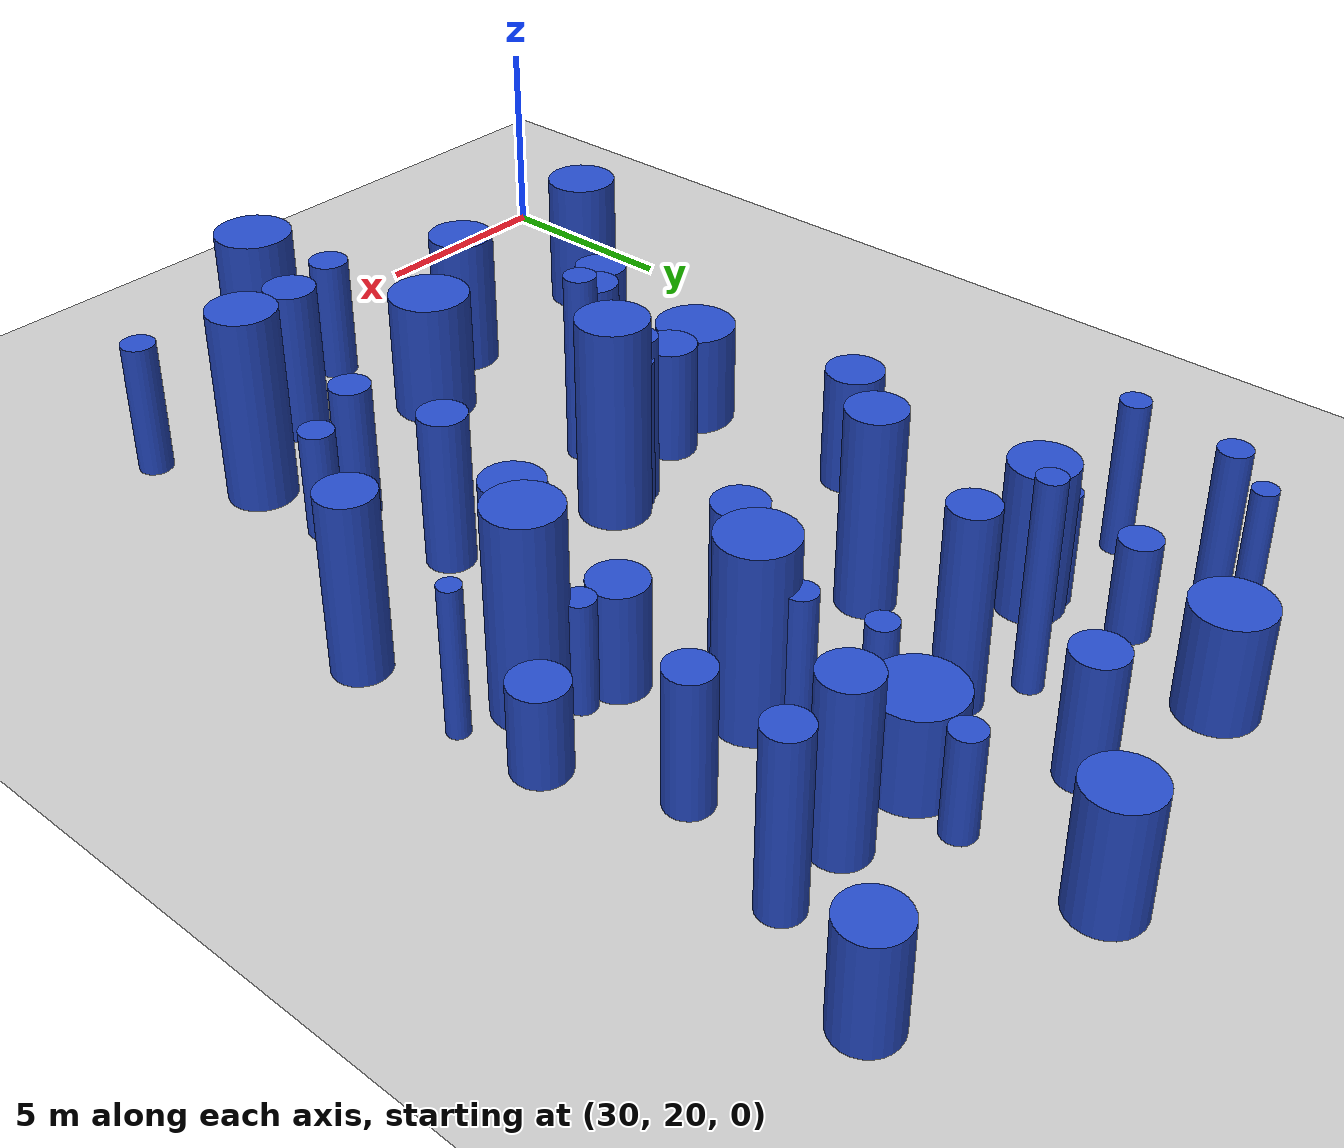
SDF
<sdf version="1.6">
 <world name="default">
  <model name="ground_plane">
   <static>1</static>
   <link name="link">
    <collision name="collision">
     <geometry><plane><normal>0 0 1</normal><size>100 100</size></plane></geometry>
     <surface><friction><ode><mu>100</mu><mu2>50</mu2></ode></friction></surface>
    </collision>
    <visual name="visual">
     <cast_shadows>0</cast_shadows>
     <geometry><plane><normal>0 0 1</normal><size>100 100</size></plane></geometry>
     <material>
      <script><uri>file://media/materials/scripts/gazebo.material</uri><name>Gazebo/Grey</name></script>
     </material>
    </visual>
   </link>
  </model>
  <model name="8">
   <static>0</static>
   <link name="link">
    <inertial>
     <mass>2</mass>
     <inertia><ixx>4.21888</ixx><ixy>0</ixy><ixz>0</ixz><iyy>4.21888</iyy><iyz>0</iyz><izz>0.689911</izz></inertia>
    </inertial>
    <collision name="collision">
     <geometry><cylinder><length>4.82115</length><radius>0.830609</radius></cylinder></geometry>
     <surface><contact><collide_without_contact>1</collide_without_contact></contact></surface>
    </collision>
    <visual name="visual">
     <geometry><cylinder><length>4.82115</length><radius>0.830609</radius></cylinder></geometry>
     <material>
      <script><uri>file://media/materials/scripts/gazebo.material</uri><name>Gazebo/Blue</name></script>
     </material>
    </visual>
    <gravity>0</gravity>
   </link>
   <pose>45.7281 35.9267 2.41058 0 -0 0</pose>
  </model>
  <model name="9">
   <static>0</static>
   <link name="link">
    <inertial>
     <mass>2</mass>
     <inertia><ixx>1.68993</ixx><ixy>0</ixy><ixz>0</ixz><iyy>1.68993</iyy><iyz>0</iyz><izz>0.640182</izz></inertia>
    </inertial>
    <collision name="collision">
     <geometry><cylinder><length>2.86689</length><radius>0.800114</radius></cylinder></geometry>
     <surface><contact><collide_without_contact>1</collide_without_contact></contact></surface>
    </collision>
    <visual name="visual">
     <geometry><cylinder><length>2.86689</length><radius>0.800114</radius></cylinder></geometry>
     <material>
      <script><uri>file://media/materials/scripts/gazebo.material</uri><name>Gazebo/Blue</name></script>
     </material>
    </visual>
    <gravity>0</gravity>
   </link>
   <pose>42.9643 47.197 1.43344 0 -0 0</pose>
  </model>
  <model name="15">
   <static>0</static>
   <link name="link">
    <inertial>
     <mass>2</mass>
     <inertia>
      <ixx>0.941599</ixx>
      <ixy>0</ixy>
      <ixz>0</ixz>
      <iyy>0.941599</iyy>
      <iyz>0</iyz>
      <izz>0.406003</izz>
     </inertia>
    </inertial>
    <collision name="collision">
     <geometry><cylinder><length>2.10513</length><radius>0.637184</radius></cylinder></geometry>
     <surface><contact><collide_without_contact>1</collide_without_contact></contact></surface>
    </collision>
    <visual name="visual">
     <geometry><cylinder><length>2.10513</length><radius>0.637184</radius></cylinder></geometry>
     <material>
      <script><uri>file://media/materials/scripts/gazebo.material</uri><name>Gazebo/Blue</name></script>
     </material>
    </visual>
    <gravity>0</gravity>
   </link>
   <pose>46.8697 37.3288 1.05257 0 -0 0</pose>
  </model>
  <model name="18">
   <static>0</static>
   <link name="link">
    <inertial>
     <mass>2</mass>
     <inertia><ixx>1.93693</ixx><ixy>0</ixy><ixz>0</ixz><iyy>1.93693</iyy><iyz>0</iyz><izz>0.344966</izz></inertia>
    </inertial>
    <collision name="collision">
     <geometry><cylinder><length>3.25372</length><radius>0.587338</radius></cylinder></geometry>
     <surface><contact><collide_without_contact>1</collide_without_contact></contact></surface>
    </collision>
    <visual name="visual">
     <geometry><cylinder><length>3.25372</length><radius>0.587338</radius></cylinder></geometry>
     <material>
      <script><uri>file://media/materials/scripts/gazebo.material</uri><name>Gazebo/Blue</name></script>
     </material>
    </visual>
    <gravity>0</gravity>
   </link>
   <pose>36.1652 28.7323 1.62686 0 -0 0</pose>
  </model>
  <model name="24">
   <static>0</static>
   <link name="link">
    <inertial>
     <mass>2</mass>
     <inertia><ixx>2.50462</ixx><ixy>0</ixy><ixz>0</ixz><iyy>2.50462</iyy><iyz>0</iyz><izz>0.451325</izz></inertia>
    </inertial>
    <collision name="collision">
     <geometry><cylinder><length>3.69781</length><radius>0.671807</radius></cylinder></geometry>
     <surface><contact><collide_without_contact>1</collide_without_contact></contact></surface>
    </collision>
    <visual name="visual">
     <geometry><cylinder><length>3.69781</length><radius>0.671807</radius></cylinder></geometry>
     <material>
      <script><uri>file://media/materials/scripts/gazebo.material</uri><name>Gazebo/Blue</name></script>
     </material>
    </visual>
    <gravity>0</gravity>
   </link>
   <pose>39.0289 32.3304 1.8489 0 -0 0</pose>
  </model>
  <model name="25">
   <static>0</static>
   <link name="link">
    <inertial>
     <mass>2</mass>
     <inertia><ixx>2.00158</ixx><ixy>0</ixy><ixz>0</ixz><iyy>2.00158</iyy><iyz>0</iyz><izz>0.12036</izz></inertia>
    </inertial>
    <collision name="collision">
     <geometry><cylinder><length>3.41298</length><radius>0.346929</radius></cylinder></geometry>
     <surface><contact><collide_without_contact>1</collide_without_contact></contact></surface>
    </collision>
    <visual name="visual">
     <geometry><cylinder><length>3.41298</length><radius>0.346929</radius></cylinder></geometry>
     <material>
      <script><uri>file://media/materials/scripts/gazebo.material</uri><name>Gazebo/Blue</name></script>
     </material>
    </visual>
    <gravity>0</gravity>
   </link>
   <pose>42.8894 40.3109 1.70649 0 -0 0</pose>
  </model>
  <model name="26">
   <static>0</static>
   <link name="link">
    <inertial>
     <mass>2</mass>
     <inertia><ixx>2.48469</ixx><ixy>0</ixy><ixz>0</ixz><iyy>2.48469</iyy><iyz>0</iyz><izz>0.314146</izz></inertia>
    </inertial>
    <collision name="collision">
     <geometry><cylinder><length>3.73707</length><radius>0.560487</radius></cylinder></geometry>
     <surface><contact><collide_without_contact>1</collide_without_contact></contact></surface>
    </collision>
    <visual name="visual">
     <geometry><cylinder><length>3.73707</length><radius>0.560487</radius></cylinder></geometry>
     <material>
      <script><uri>file://media/materials/scripts/gazebo.material</uri><name>Gazebo/Blue</name></script>
     </material>
    </visual>
    <gravity>0</gravity>
   </link>
   <pose>43.2934 31.0546 1.86853 0 -0 0</pose>
  </model>
  <model name="30">
   <static>0</static>
   <link name="link">
    <inertial>
     <mass>2</mass>
     <inertia><ixx>1.34983</ixx><ixy>0</ixy><ixz>0</ixz><iyy>1.34983</iyy><iyz>0</iyz><izz>0.973345</izz></inertia>
    </inertial>
    <collision name="collision">
     <geometry><cylinder><length>2.27573</length><radius>0.986583</radius></cylinder></geometry>
     <surface><contact><collide_without_contact>1</collide_without_contact></contact></surface>
    </collision>
    <visual name="visual">
     <geometry><cylinder><length>2.27573</length><radius>0.986583</radius></cylinder></geometry>
     <material>
      <script><uri>file://media/materials/scripts/gazebo.material</uri><name>Gazebo/Blue</name></script>
     </material>
    </visual>
    <gravity>0</gravity>
   </link>
   <pose>42.5501 42.8164 1.13786 0 -0 0</pose>
  </model>
  <model name="35">
   <static>0</static>
   <link name="link">
    <inertial>
     <mass>2</mass>
     <inertia><ixx>4.18085</ixx><ixy>0</ixy><ixz>0</ixz><iyy>4.18085</iyy><iyz>0</iyz><izz>0.105493</izz></inertia>
    </inertial>
    <collision name="collision">
     <geometry><cylinder><length>4.97681</length><radius>0.324796</radius></cylinder></geometry>
     <surface><contact><collide_without_contact>1</collide_without_contact></contact></surface>
    </collision>
    <visual name="visual">
     <geometry><cylinder><length>4.97681</length><radius>0.324796</radius></cylinder></geometry>
     <material>
      <script><uri>file://media/materials/scripts/gazebo.material</uri><name>Gazebo/Blue</name></script>
     </material>
    </visual>
    <gravity>0</gravity>
   </link>
   <pose>38.6592 42.8925 2.4884 0 -0 0</pose>
  </model>
  <model name="37">
   <static>0</static>
   <link name="link">
    <inertial>
     <mass>2</mass>
     <inertia><ixx>2.41909</ixx><ixy>0</ixy><ixz>0</ixz><iyy>2.41909</iyy><iyz>0</iyz><izz>0.120372</izz></inertia>
    </inertial>
    <collision name="collision">
     <geometry><cylinder><length>3.76211</length><radius>0.346947</radius></cylinder></geometry>
     <surface><contact><collide_without_contact>1</collide_without_contact></contact></surface>
    </collision>
    <visual name="visual">
     <geometry><cylinder><length>3.76211</length><radius>0.346947</radius></cylinder></geometry>
     <material>
      <script><uri>file://media/materials/scripts/gazebo.material</uri><name>Gazebo/Blue</name></script>
     </material>
    </visual>
    <gravity>0</gravity>
   </link>
   <pose>33.2468 41.7347 1.88105 0 -0 0</pose>
  </model>
  <model name="40">
   <static>0</static>
   <link name="link">
    <inertial>
     <mass>2</mass>
     <inertia><ixx>1.05673</ixx><ixy>0</ixy><ixz>0</ixz><iyy>1.05673</iyy><iyz>0</iyz><izz>0.145747</izz></inertia>
    </inertial>
    <collision name="collision">
     <geometry><cylinder><length>2.42964</length><radius>0.381768</radius></cylinder></geometry>
     <surface><contact><collide_without_contact>1</collide_without_contact></contact></surface>
    </collision>
    <visual name="visual">
     <geometry><cylinder><length>2.42964</length><radius>0.381768</radius></cylinder></geometry>
     <material>
      <script><uri>file://media/materials/scripts/gazebo.material</uri><name>Gazebo/Blue</name></script>
     </material>
    </visual>
    <gravity>0</gravity>
   </link>
   <pose>43.0934 44.2266 1.21482 0 -0 0</pose>
  </model>
  <model name="50">
   <static>0</static>
   <link name="link">
    <inertial>
     <mass>2</mass>
     <inertia><ixx>1.52309</ixx><ixy>0</ixy><ixz>0</ixz><iyy>1.52309</iyy><iyz>0</iyz><izz>0.943157</izz></inertia>
    </inertial>
    <collision name="collision">
     <geometry><cylinder><length>2.51179</length><radius>0.971163</radius></cylinder></geometry>
     <surface><contact><collide_without_contact>1</collide_without_contact></contact></surface>
    </collision>
    <visual name="visual">
     <geometry><cylinder><length>2.51179</length><radius>0.971163</radius></cylinder></geometry>
     <material>
      <script><uri>file://media/materials/scripts/gazebo.material</uri><name>Gazebo/Blue</name></script>
     </material>
    </visual>
    <gravity>0</gravity>
   </link>
   <pose>35.1033 31.0404 1.25589 0 -0 0</pose>
  </model>
  <model name="54">
   <static>0</static>
   <link name="link">
    <inertial>
     <mass>2</mass>
     <inertia><ixx>1.94131</ixx><ixy>0</ixy><ixz>0</ixz><iyy>1.94131</iyy><iyz>0</iyz><izz>0.231084</izz></inertia>
    </inertial>
    <collision name="collision">
     <geometry><cylinder><length>3.30977</length><radius>0.480712</radius></cylinder></geometry>
     <surface><contact><collide_without_contact>1</collide_without_contact></contact></surface>
    </collision>
    <visual name="visual">
     <geometry><cylinder><length>3.30977</length><radius>0.480712</radius></cylinder></geometry>
     <material>
      <script><uri>file://media/materials/scripts/gazebo.material</uri><name>Gazebo/Blue</name></script>
     </material>
    </visual>
    <gravity>0</gravity>
   </link>
   <pose>43.3469 28.1129 1.65489 0 -0 0</pose>
  </model>
  <model name="61">
   <static>0</static>
   <link name="link">
    <inertial>
     <mass>2</mass>
     <inertia><ixx>2.09542</ixx><ixy>0</ixy><ixz>0</ixz><iyy>2.09542</iyy><iyz>0</iyz><izz>0.981414</izz></inertia>
    </inertial>
    <collision name="collision">
     <geometry><cylinder><length>3.10294</length><radius>0.990663</radius></cylinder></geometry>
     <surface><contact><collide_without_contact>1</collide_without_contact></contact></surface>
    </collision>
    <visual name="visual">
     <geometry><cylinder><length>3.10294</length><radius>0.990663</radius></cylinder></geometry>
     <material>
      <script><uri>file://media/materials/scripts/gazebo.material</uri><name>Gazebo/Blue</name></script>
     </material>
    </visual>
    <gravity>0</gravity>
   </link>
   <pose>38.9949 25.9241 1.55147 0 -0 0</pose>
  </model>
  <model name="64">
   <static>0</static>
   <link name="link">
    <inertial>
     <mass>2</mass>
     <inertia><ixx>1.21441</ixx><ixy>0</ixy><ixz>0</ixz><iyy>1.21441</iyy><iyz>0</iyz><izz>0.120471</izz></inertia>
    </inertial>
    <collision name="collision">
     <geometry><cylinder><length>2.63155</length><radius>0.34709</radius></cylinder></geometry>
     <surface><contact><collide_without_contact>1</collide_without_contact></contact></surface>
    </collision>
    <visual name="visual">
     <geometry><cylinder><length>2.63155</length><radius>0.34709</radius></cylinder></geometry>
     <material>
      <script><uri>file://media/materials/scripts/gazebo.material</uri><name>Gazebo/Blue</name></script>
     </material>
    </visual>
    <gravity>0</gravity>
   </link>
   <pose>45.0063 36.6208 1.31577 0 -0 0</pose>
  </model>
  <model name="67">
   <static>0</static>
   <link name="link">
    <inertial>
     <mass>2</mass>
     <inertia><ixx>1.71533</ixx><ixy>0</ixy><ixz>0</ixz><iyy>1.71533</iyy><iyz>0</iyz><izz>0.238819</izz></inertia>
    </inertial>
    <collision name="collision">
     <geometry><cylinder><length>3.09444</length><radius>0.488691</radius></cylinder></geometry>
     <surface><contact><collide_without_contact>1</collide_without_contact></contact></surface>
    </collision>
    <visual name="visual">
     <geometry><cylinder><length>3.09444</length><radius>0.488691</radius></cylinder></geometry>
     <material>
      <script><uri>file://media/materials/scripts/gazebo.material</uri><name>Gazebo/Blue</name></script>
     </material>
    </visual>
    <gravity>0</gravity>
   </link>
   <pose>39.4487 22.7582 1.54722 0 -0 0</pose>
  </model>
  <model name="85">
   <static>0</static>
   <link name="link">
    <inertial>
     <mass>2</mass>
     <inertia><ixx>2.93221</ixx><ixy>0</ixy><ixz>0</ixz><iyy>2.93221</iyy><iyz>0</iyz><izz>0.192684</izz></inertia>
    </inertial>
    <collision name="collision">
     <geometry><cylinder><length>4.12495</length><radius>0.438958</radius></cylinder></geometry>
     <surface><contact><collide_without_contact>1</collide_without_contact></contact></surface>
    </collision>
    <visual name="visual">
     <geometry><cylinder><length>4.12495</length><radius>0.438958</radius></cylinder></geometry>
     <material>
      <script><uri>file://media/materials/scripts/gazebo.material</uri><name>Gazebo/Blue</name></script>
     </material>
    </visual>
    <gravity>0</gravity>
   </link>
   <pose>38.6 32.3805 2.06248 0 -0 0</pose>
  </model>
  <model name="104">
   <static>0</static>
   <link name="link">
    <inertial>
     <mass>2</mass>
     <inertia>
      <ixx>0.736949</ixx>
      <ixy>0</ixy>
      <ixz>0</ixz>
      <iyy>0.736949</iyy>
      <iyz>0</iyz>
      <izz>0.125997</izz>
     </inertia>
    </inertial>
    <collision name="collision">
     <geometry><cylinder><length>2.0109</length><radius>0.354961</radius></cylinder></geometry>
     <surface><contact><collide_without_contact>1</collide_without_contact></contact></surface>
    </collision>
    <visual name="visual">
     <geometry><cylinder><length>2.0109</length><radius>0.354961</radius></cylinder></geometry>
     <material>
      <script><uri>file://media/materials/scripts/gazebo.material</uri><name>Gazebo/Blue</name></script>
     </material>
    </visual>
    <gravity>0</gravity>
   </link>
   <pose>41.095 40.9536 1.00545 0 -0 0</pose>
  </model>
  <model name="105">
   <static>0</static>
   <link name="link">
    <inertial>
     <mass>2</mass>
     <inertia><ixx>1.90894</ixx><ixy>0</ixy><ixz>0</ixz><iyy>1.90894</iyy><iyz>0</iyz><izz>0.166775</izz></inertia>
    </inertial>
    <collision name="collision">
     <geometry><cylinder><length>3.30958</length><radius>0.408381</radius></cylinder></geometry>
     <surface><contact><collide_without_contact>1</collide_without_contact></contact></surface>
    </collision>
    <visual name="visual">
     <geometry><cylinder><length>3.30958</length><radius>0.408381</radius></cylinder></geometry>
     <material>
      <script><uri>file://media/materials/scripts/gazebo.material</uri><name>Gazebo/Blue</name></script>
     </material>
    </visual>
    <gravity>0</gravity>
   </link>
   <pose>45.3048 23.0794 1.65479 0 -0 0</pose>
  </model>
  <model name="106">
   <static>0</static>
   <link name="link">
    <inertial>
     <mass>2</mass>
     <inertia><ixx>2.37876</ixx><ixy>0</ixy><ixz>0</ixz><iyy>2.37876</iyy><iyz>0</iyz><izz>0.378388</izz></inertia>
    </inertial>
    <collision name="collision">
     <geometry><cylinder><length>3.62456</length><radius>0.615133</radius></cylinder></geometry>
     <surface><contact><collide_without_contact>1</collide_without_contact></contact></surface>
    </collision>
    <visual name="visual">
     <geometry><cylinder><length>3.62456</length><radius>0.615133</radius></cylinder></geometry>
     <material>
      <script><uri>file://media/materials/scripts/gazebo.material</uri><name>Gazebo/Blue</name></script>
     </material>
    </visual>
    <gravity>0</gravity>
   </link>
   <pose>41.6078 37.7844 1.81228 0 -0 0</pose>
  </model>
  <model name="110">
   <static>0</static>
   <link name="link">
    <inertial>
     <mass>2</mass>
     <inertia><ixx>2.97227</ixx><ixy>0</ixy><ixz>0</ixz><iyy>2.97227</iyy><iyz>0</iyz><izz>0.242223</izz></inertia>
    </inertial>
    <collision name="collision">
     <geometry><cylinder><length>4.13605</length><radius>0.492161</radius></cylinder></geometry>
     <surface><contact><collide_without_contact>1</collide_without_contact></contact></surface>
    </collision>
    <visual name="visual">
     <geometry><cylinder><length>4.13605</length><radius>0.492161</radius></cylinder></geometry>
     <material>
      <script><uri>file://media/materials/scripts/gazebo.material</uri><name>Gazebo/Blue</name></script>
     </material>
    </visual>
    <gravity>0</gravity>
   </link>
   <pose>46.6972 42.9691 2.06803 0 -0 0</pose>
  </model>
  <model name="115">
   <static>0</static>
   <link name="link">
    <inertial>
     <mass>2</mass>
     <inertia><ixx>3.61971</ixx><ixy>0</ixy><ixz>0</ixz><iyy>3.61971</iyy><iyz>0</iyz><izz>0.745024</izz></inertia>
    </inertial>
    <collision name="collision">
     <geometry><cylinder><length>4.41398</length><radius>0.863148</radius></cylinder></geometry>
     <surface><contact><collide_without_contact>1</collide_without_contact></contact></surface>
    </collision>
    <visual name="visual">
     <geometry><cylinder><length>4.41398</length><radius>0.863148</radius></cylinder></geometry>
     <material>
      <script><uri>file://media/materials/scripts/gazebo.material</uri><name>Gazebo/Blue</name></script>
     </material>
    </visual>
    <gravity>0</gravity>
   </link>
   <pose>43.1164 39.4255 2.20699 0 -0 0</pose>
  </model>
  <model name="124">
   <static>0</static>
   <link name="link">
    <inertial>
     <mass>2</mass>
     <inertia><ixx>1.24879</ixx><ixy>0</ixy><ixz>0</ixz><iyy>1.24879</iyy><iyz>0</iyz><izz>0.170517</izz></inertia>
    </inertial>
    <collision name="collision">
     <geometry><cylinder><length>2.64219</length><radius>0.412937</radius></cylinder></geometry>
     <surface><contact><collide_without_contact>1</collide_without_contact></contact></surface>
    </collision>
    <visual name="visual">
     <geometry><cylinder><length>2.64219</length><radius>0.412937</radius></cylinder></geometry>
     <material>
      <script><uri>file://media/materials/scripts/gazebo.material</uri><name>Gazebo/Blue</name></script>
     </material>
    </visual>
    <gravity>0</gravity>
   </link>
   <pose>44.3948 28.1453 1.3211 0 -0 0</pose>
  </model>
  <model name="127">
   <static>0</static>
   <link name="link">
    <inertial>
     <mass>2</mass>
     <inertia><ixx>2.70302</ixx><ixy>0</ixy><ixz>0</ixz><iyy>2.70302</iyy><iyz>0</iyz><izz>0.394791</izz></inertia>
    </inertial>
    <collision name="collision">
     <geometry><cylinder><length>3.87734</length><radius>0.628324</radius></cylinder></geometry>
     <surface><contact><collide_without_contact>1</collide_without_contact></contact></surface>
    </collision>
    <visual name="visual">
     <geometry><cylinder><length>3.87734</length><radius>0.628324</radius></cylinder></geometry>
     <material>
      <script><uri>file://media/materials/scripts/gazebo.material</uri><name>Gazebo/Blue</name></script>
     </material>
    </visual>
    <gravity>0</gravity>
   </link>
   <pose>41.9268 24.3981 1.93867 0 -0 0</pose>
  </model>
  <model name="131">
   <static>0</static>
   <link name="link">
    <inertial>
     <mass>2</mass>
     <inertia><ixx>2.45671</ixx><ixy>0</ixy><ixz>0</ixz><iyy>2.45671</iyy><iyz>0</iyz><izz>0.599774</izz></inertia>
    </inertial>
    <collision name="collision">
     <geometry><cylinder><length>3.59735</length><radius>0.77445</radius></cylinder></geometry>
     <surface><contact><collide_without_contact>1</collide_without_contact></contact></surface>
    </collision>
    <visual name="visual">
     <geometry><cylinder><length>3.59735</length><radius>0.77445</radius></cylinder></geometry>
     <material>
      <script><uri>file://media/materials/scripts/gazebo.material</uri><name>Gazebo/Blue</name></script>
     </material>
    </visual>
    <gravity>0</gravity>
   </link>
   <pose>36.3397 41.4394 1.79867 0 -0 0</pose>
  </model>
  <model name="133">
   <static>0</static>
   <link name="link">
    <inertial>
     <mass>2</mass>
     <inertia>
      <ixx>2.08785</ixx>
      <ixy>0</ixy>
      <ixz>0</ixz>
      <iyy>2.08785</iyy>
      <iyz>0</iyz>
      <izz>0.0660541</izz>
     </inertia>
    </inertial>
    <collision name="collision">
     <geometry><cylinder><length>3.51126</length><radius>0.25701</radius></cylinder></geometry>
     <surface><contact><collide_without_contact>1</collide_without_contact></contact></surface>
    </collision>
    <visual name="visual">
     <geometry><cylinder><length>3.51126</length><radius>0.25701</radius></cylinder></geometry>
     <material>
      <script><uri>file://media/materials/scripts/gazebo.material</uri><name>Gazebo/Blue</name></script>
     </material>
    </visual>
    <gravity>0</gravity>
   </link>
   <pose>47.1721 35.3749 1.75563 0 -0 0</pose>
  </model>
  <model name="140">
   <static>0</static>
   <link name="link">
    <inertial>
     <mass>2</mass>
     <inertia><ixx>1.66226</ixx><ixy>0</ixy><ixz>0</ixz><iyy>1.66226</iyy><iyz>0</iyz><izz>0.357537</izz></inertia>
    </inertial>
    <collision name="collision">
     <geometry><cylinder><length>2.98345</length><radius>0.597944</radius></cylinder></geometry>
     <surface><contact><collide_without_contact>1</collide_without_contact></contact></surface>
    </collision>
    <visual name="visual">
     <geometry><cylinder><length>2.98345</length><radius>0.597944</radius></cylinder></geometry>
     <material>
      <script><uri>file://media/materials/scripts/gazebo.material</uri><name>Gazebo/Blue</name></script>
     </material>
    </visual>
    <gravity>0</gravity>
   </link>
   <pose>40.2521 45.1222 1.49172 0 -0 0</pose>
  </model>
  <model name="153">
   <static>0</static>
   <link name="link">
    <inertial>
     <mass>2</mass>
     <inertia><ixx>3.80109</ixx><ixy>0</ixy><ixz>0</ixz><iyy>3.80109</iyy><iyz>0</iyz><izz>0.299501</izz></inertia>
    </inertial>
    <collision name="collision">
     <geometry><cylinder><length>4.6806</length><radius>0.547266</radius></cylinder></geometry>
     <surface><contact><collide_without_contact>1</collide_without_contact></contact></surface>
    </collision>
    <visual name="visual">
     <geometry><cylinder><length>4.6806</length><radius>0.547266</radius></cylinder></geometry>
     <material>
      <script><uri>file://media/materials/scripts/gazebo.material</uri><name>Gazebo/Blue</name></script>
     </material>
    </visual>
    <gravity>0</gravity>
   </link>
   <pose>40.0122 42.0886 2.3403 0 -0 0</pose>
  </model>
  <model name="157">
   <static>0</static>
   <link name="link">
    <inertial>
     <mass>2</mass>
     <inertia><ixx>1.66428</ixx><ixy>0</ixy><ixz>0</ixz><iyy>1.66428</iyy><iyz>0</iyz><izz>0.47442</izz></inertia>
    </inertial>
    <collision name="collision">
     <geometry><cylinder><length>2.92616</length><radius>0.688782</radius></cylinder></geometry>
     <surface><contact><collide_without_contact>1</collide_without_contact></contact></surface>
    </collision>
    <visual name="visual">
     <geometry><cylinder><length>2.92616</length><radius>0.688782</radius></cylinder></geometry>
     <material>
      <script><uri>file://media/materials/scripts/gazebo.material</uri><name>Gazebo/Blue</name></script>
     </material>
    </visual>
    <gravity>0</gravity>
   </link>
   <pose>34.9365 35.6566 1.46308 0 -0 0</pose>
  </model>
  <model name="161">
   <static>0</static>
   <link name="link">
    <inertial>
     <mass>2</mass>
     <inertia><ixx>1.50176</ixx><ixy>0</ixy><ixz>0</ixz><iyy>1.50176</iyy><iyz>0</iyz><izz>0.788703</izz></inertia>
    </inertial>
    <collision name="collision">
     <geometry><cylinder><length>2.57769</length><radius>0.888089</radius></cylinder></geometry>
     <surface><contact><collide_without_contact>1</collide_without_contact></contact></surface>
    </collision>
    <visual name="visual">
     <geometry><cylinder><length>2.57769</length><radius>0.888089</radius></cylinder></geometry>
     <material>
      <script><uri>file://media/materials/scripts/gazebo.material</uri><name>Gazebo/Blue</name></script>
     </material>
    </visual>
    <gravity>0</gravity>
   </link>
   <pose>36.8547 46.0717 1.28884 0 -0 0</pose>
  </model>
  <model name="177">
   <static>0</static>
   <link name="link">
    <inertial>
     <mass>2</mass>
     <inertia><ixx>2.3402</ixx><ixy>0</ixy><ixz>0</ixz><iyy>2.3402</iyy><iyz>0</iyz><izz>0.645349</izz></inertia>
    </inertial>
    <collision name="collision">
     <geometry><cylinder><length>3.47924</length><radius>0.803336</radius></cylinder></geometry>
     <surface><contact><collide_without_contact>1</collide_without_contact></contact></surface>
    </collision>
    <visual name="visual">
     <geometry><cylinder><length>3.47924</length><radius>0.803336</radius></cylinder></geometry>
     <material>
      <script><uri>file://media/materials/scripts/gazebo.material</uri><name>Gazebo/Blue</name></script>
     </material>
    </visual>
    <gravity>0</gravity>
   </link>
   <pose>36.8092 24.7473 1.73962 0 -0 0</pose>
  </model>
  <model name="178">
   <static>0</static>
   <link name="link">
    <inertial>
     <mass>2</mass>
     <inertia><ixx>2.36862</ixx><ixy>0</ixy><ixz>0</ixz><iyy>2.36862</iyy><iyz>0</iyz><izz>0.763375</izz></inertia>
    </inertial>
    <collision name="collision">
     <geometry><cylinder><length>3.45276</length><radius>0.873713</radius></cylinder></geometry>
     <surface><contact><collide_without_contact>1</collide_without_contact></contact></surface>
    </collision>
    <visual name="visual">
     <geometry><cylinder><length>3.45276</length><radius>0.873713</radius></cylinder></geometry>
     <material>
      <script><uri>file://media/materials/scripts/gazebo.material</uri><name>Gazebo/Blue</name></script>
     </material>
    </visual>
    <gravity>0</gravity>
   </link>
   <pose>32.3194 24.6572 1.72638 0 -0 0</pose>
  </model>
  <model name="181">
   <static>0</static>
   <link name="link">
    <inertial>
     <mass>2</mass>
     <inertia><ixx>4.4473</ixx><ixy>0</ixy><ixz>0</ixz><iyy>4.4473</iyy><iyz>0</iyz><izz>0.703906</izz></inertia>
    </inertial>
    <collision name="collision">
     <geometry><cylinder><length>4.95702</length><radius>0.838991</radius></cylinder></geometry>
     <surface><contact><collide_without_contact>1</collide_without_contact></contact></surface>
    </collision>
    <visual name="visual">
     <geometry><cylinder><length>4.95702</length><radius>0.838991</radius></cylinder></geometry>
     <material>
      <script><uri>file://media/materials/scripts/gazebo.material</uri><name>Gazebo/Blue</name></script>
     </material>
    </visual>
    <gravity>0</gravity>
   </link>
   <pose>39.5142 32.4462 2.47851 0 -0 0</pose>
  </model>
  <model name="184">
   <static>0</static>
   <link name="link">
    <inertial>
     <mass>2</mass>
     <inertia><ixx>1.29878</ixx><ixy>0</ixy><ixz>0</ixz><iyy>1.29878</iyy><iyz>0</iyz><izz>0.120251</izz></inertia>
    </inertial>
    <collision name="collision">
     <geometry><cylinder><length>2.72616</length><radius>0.346772</radius></cylinder></geometry>
     <surface><contact><collide_without_contact>1</collide_without_contact></contact></surface>
    </collision>
    <visual name="visual">
     <geometry><cylinder><length>2.72616</length><radius>0.346772</radius></cylinder></geometry>
     <material>
      <script><uri>file://media/materials/scripts/gazebo.material</uri><name>Gazebo/Blue</name></script>
     </material>
    </visual>
    <gravity>0</gravity>
   </link>
   <pose>35.8162 41.7483 1.36308 0 -0 0</pose>
  </model>
  <model name="187">
   <static>0</static>
   <link name="link">
    <inertial>
     <mass>2</mass>
     <inertia><ixx>3.28038</ixx><ixy>0</ixy><ixz>0</ixz><iyy>3.28038</iyy><iyz>0</iyz><izz>0.426535</izz></inertia>
    </inertial>
    <collision name="collision">
     <geometry><cylinder><length>4.28983</length><radius>0.653096</radius></cylinder></geometry>
     <surface><contact><collide_without_contact>1</collide_without_contact></contact></surface>
    </collision>
    <visual name="visual">
     <geometry><cylinder><length>4.28983</length><radius>0.653096</radius></cylinder></geometry>
     <material>
      <script><uri>file://media/materials/scripts/gazebo.material</uri><name>Gazebo/Blue</name></script>
     </material>
    </visual>
    <gravity>0</gravity>
   </link>
   <pose>47.092 32.4595 2.14492 0 -0 0</pose>
  </model>
  <model name="188">
   <static>0</static>
   <link name="link">
    <inertial>
     <mass>2</mass>
     <inertia><ixx>4.17685</ixx><ixy>0</ixy><ixz>0</ixz><iyy>4.17685</iyy><iyz>0</iyz><izz>0.658429</izz></inertia>
    </inertial>
    <collision name="collision">
     <geometry><cylinder><length>4.80477</length><radius>0.811436</radius></cylinder></geometry>
     <surface><contact><collide_without_contact>1</collide_without_contact></contact></surface>
    </collision>
    <visual name="visual">
     <geometry><cylinder><length>4.80477</length><radius>0.811436</radius></cylinder></geometry>
     <material>
      <script><uri>file://media/materials/scripts/gazebo.material</uri><name>Gazebo/Blue</name></script>
     </material>
    </visual>
    <gravity>0</gravity>
   </link>
   <pose>44.3475 25.8647 2.40238 0 -0 0</pose>
  </model>
  <model name="192">
   <static>0</static>
   <link name="link">
    <inertial>
     <mass>2</mass>
     <inertia><ixx>4.03755</ixx><ixy>0</ixy><ixz>0</ixz><iyy>4.03755</iyy><iyz>0</iyz><izz>0.45095</izz></inertia>
    </inertial>
    <collision name="collision">
     <geometry><cylinder><length>4.78251</length><radius>0.671528</radius></cylinder></geometry>
     <surface><contact><collide_without_contact>1</collide_without_contact></contact></surface>
    </collision>
    <visual name="visual">
     <geometry><cylinder><length>4.78251</length><radius>0.671528</radius></cylinder></geometry>
     <material>
      <script><uri>file://media/materials/scripts/gazebo.material</uri><name>Gazebo/Blue</name></script>
     </material>
    </visual>
    <gravity>0</gravity>
   </link>
   <pose>38.5385 38.7639 2.39126 0 -0 0</pose>
  </model>
  <model name="196">
   <static>0</static>
   <link name="link">
    <inertial>
     <mass>2</mass>
     <inertia><ixx>1.2622</ixx><ixy>0</ixy><ixz>0</ixz><iyy>1.2622</iyy><iyz>0</iyz><izz>0.426876</izz></inertia>
    </inertial>
    <collision name="collision">
     <geometry><cylinder><length>2.5085</length><radius>0.653358</radius></cylinder></geometry>
     <surface><contact><collide_without_contact>1</collide_without_contact></contact></surface>
    </collision>
    <visual name="visual">
     <geometry><cylinder><length>2.5085</length><radius>0.653358</radius></cylinder></geometry>
     <material>
      <script><uri>file://media/materials/scripts/gazebo.material</uri><name>Gazebo/Blue</name></script>
     </material>
    </visual>
    <gravity>0</gravity>
   </link>
   <pose>34.3565 27.2331 1.25425 0 -0 0</pose>
  </model>
  <model name="204">
   <static>0</static>
   <link name="link">
    <inertial>
     <mass>2</mass>
     <inertia><ixx>1.33373</ixx><ixy>0</ixy><ixz>0</ixz><iyy>1.33373</iyy><iyz>0</iyz><izz>0.437985</izz></inertia>
    </inertial>
    <collision name="collision">
     <geometry><cylinder><length>2.58619</length><radius>0.661805</radius></cylinder></geometry>
     <surface><contact><collide_without_contact>1</collide_without_contact></contact></surface>
    </collision>
    <visual name="visual">
     <geometry><cylinder><length>2.58619</length><radius>0.661805</radius></cylinder></geometry>
     <material>
      <script><uri>file://media/materials/scripts/gazebo.material</uri><name>Gazebo/Blue</name></script>
     </material>
    </visual>
    <gravity>0</gravity>
   </link>
   <pose>44.0384 36.7331 1.2931 0 -0 0</pose>
  </model>
  <model name="208">
   <static>0</static>
   <link name="link">
    <inertial>
     <mass>2</mass>
     <inertia>
      <ixx>2.51796</ixx>
      <ixy>0</ixy>
      <ixz>0</ixz>
      <iyy>2.51796</iyy>
      <iyz>0</iyz>
      <izz>0.0771087</izz>
     </inertia>
    </inertial>
    <collision name="collision">
     <geometry><cylinder><length>3.857</length><radius>0.277685</radius></cylinder></geometry>
     <surface><contact><collide_without_contact>1</collide_without_contact></contact></surface>
    </collision>
    <visual name="visual">
     <geometry><cylinder><length>3.857</length><radius>0.277685</radius></cylinder></geometry>
     <material>
      <script><uri>file://media/materials/scripts/gazebo.material</uri><name>Gazebo/Blue</name></script>
     </material>
    </visual>
    <gravity>0</gravity>
   </link>
   <pose>45.3938 36.0645 1.9285 0 -0 0</pose>
  </model>
  <model name="210">
   <static>0</static>
   <link name="link">
    <inertial>
     <mass>2</mass>
     <inertia><ixx>3.77643</ixx><ixy>0</ixy><ixz>0</ixz><iyy>3.77643</iyy><iyz>0</iyz><izz>0.149231</izz></inertia>
    </inertial>
    <collision name="collision">
     <geometry><cylinder><length>4.71284</length><radius>0.386304</radius></cylinder></geometry>
     <surface><contact><collide_without_contact>1</collide_without_contact></contact></surface>
    </collision>
    <visual name="visual">
     <geometry><cylinder><length>4.71284</length><radius>0.386304</radius></cylinder></geometry>
     <material>
      <script><uri>file://media/materials/scripts/gazebo.material</uri><name>Gazebo/Blue</name></script>
     </material>
    </visual>
    <gravity>0</gravity>
   </link>
   <pose>38.1766 30.1995 2.35642 0 -0 0</pose>
  </model>
  <model name="212">
   <static>0</static>
   <link name="link">
    <inertial>
     <mass>2</mass>
     <inertia><ixx>1.27304</ixx><ixy>0</ixy><ixz>0</ixz><iyy>1.27304</iyy><iyz>0</iyz><izz>0.482865</izz></inertia>
    </inertial>
    <collision name="collision">
     <geometry><cylinder><length>2.48789</length><radius>0.694885</radius></cylinder></geometry>
     <surface><contact><collide_without_contact>1</collide_without_contact></contact></surface>
    </collision>
    <visual name="visual">
     <geometry><cylinder><length>2.48789</length><radius>0.694885</radius></cylinder></geometry>
     <material>
      <script><uri>file://media/materials/scripts/gazebo.material</uri><name>Gazebo/Blue</name></script>
     </material>
    </visual>
    <gravity>0</gravity>
   </link>
   <pose>47.8332 45.6357 1.24395 0 -0 0</pose>
  </model>
  <model name="214">
   <static>0</static>
   <link name="link">
    <inertial>
     <mass>2</mass>
     <inertia><ixx>1.5408</ixx><ixy>0</ixy><ixz>0</ixz><iyy>1.5408</iyy><iyz>0</iyz><izz>0.418994</izz></inertia>
    </inertial>
    <collision name="collision">
     <geometry><cylinder><length>2.82628</length><radius>0.647297</radius></cylinder></geometry>
     <surface><contact><collide_without_contact>1</collide_without_contact></contact></surface>
    </collision>
    <visual name="visual">
     <geometry><cylinder><length>2.82628</length><radius>0.647297</radius></cylinder></geometry>
     <material>
      <script><uri>file://media/materials/scripts/gazebo.material</uri><name>Gazebo/Blue</name></script>
     </material>
    </visual>
    <gravity>0</gravity>
   </link>
   <pose>36.6525 31.5929 1.41314 0 -0 0</pose>
  </model>
  <model name="215">
   <static>0</static>
   <link name="link">
    <inertial>
     <mass>2</mass>
     <inertia><ixx>1.03096</ixx><ixy>0</ixy><ixz>0</ixz><iyy>1.03096</iyy><iyz>0</iyz><izz>0.226787</izz></inertia>
    </inertial>
    <collision name="collision">
     <geometry><cylinder><length>2.34636</length><radius>0.476222</radius></cylinder></geometry>
     <surface><contact><collide_without_contact>1</collide_without_contact></contact></surface>
    </collision>
    <visual name="visual">
     <geometry><cylinder><length>2.34636</length><radius>0.476222</radius></cylinder></geometry>
     <material>
      <script><uri>file://media/materials/scripts/gazebo.material</uri><name>Gazebo/Blue</name></script>
     </material>
    </visual>
    <gravity>0</gravity>
   </link>
   <pose>35.7849 43.5015 1.17318 0 -0 0</pose>
  </model>
  <model name="216">
   <static>0</static>
   <link name="link">
    <inertial>
     <mass>2</mass>
     <inertia><ixx>1.78362</ixx><ixy>0</ixy><ixz>0</ixz><iyy>1.78362</iyy><iyz>0</iyz><izz>0.535905</izz></inertia>
    </inertial>
    <collision name="collision">
     <geometry><cylinder><length>3.01562</length><radius>0.732056</radius></cylinder></geometry>
     <surface><contact><collide_without_contact>1</collide_without_contact></contact></surface>
    </collision>
    <visual name="visual">
     <geometry><cylinder><length>3.01562</length><radius>0.732056</radius></cylinder></geometry>
     <material>
      <script><uri>file://media/materials/scripts/gazebo.material</uri><name>Gazebo/Blue</name></script>
     </material>
    </visual>
    <gravity>0</gravity>
   </link>
   <pose>43.3744 33.1787 1.50781 0 -0 0</pose>
  </model>
  <model name="233">
   <static>0</static>
   <link name="link">
    <inertial>
     <mass>2</mass>
     <inertia><ixx>2.84357</ixx><ixy>0</ixy><ixz>0</ixz><iyy>2.84357</iyy><iyz>0</iyz><izz>0.142275</izz></inertia>
    </inertial>
    <collision name="collision">
     <geometry><cylinder><length>4.07855</length><radius>0.377194</radius></cylinder></geometry>
     <surface><contact><collide_without_contact>1</collide_without_contact></contact></surface>
    </collision>
    <visual name="visual">
     <geometry><cylinder><length>4.07855</length><radius>0.377194</radius></cylinder></geometry>
     <material>
      <script><uri>file://media/materials/scripts/gazebo.material</uri><name>Gazebo/Blue</name></script>
     </material>
    </visual>
    <gravity>0</gravity>
   </link>
   <pose>34.0992 44.4327 2.03928 0 -0 0</pose>
  </model>
  <model name="237">
   <static>0</static>
   <link name="link">
    <inertial>
     <mass>2</mass>
     <inertia><ixx>2.95964</ixx><ixy>0</ixy><ixz>0</ixz><iyy>2.95964</iyy><iyz>0</iyz><izz>0.400042</izz></inertia>
    </inertial>
    <collision name="collision">
     <geometry><cylinder><length>4.06912</length><radius>0.632489</radius></cylinder></geometry>
     <surface><contact><collide_without_contact>1</collide_without_contact></contact></surface>
    </collision>
    <visual name="visual">
     <geometry><cylinder><length>4.06912</length><radius>0.632489</radius></cylinder></geometry>
     <material>
      <script><uri>file://media/materials/scripts/gazebo.material</uri><name>Gazebo/Blue</name></script>
     </material>
    </visual>
    <gravity>0</gravity>
   </link>
   <pose>44.8521 42.8664 2.03456 0 -0 0</pose>
  </model>
  <model name="239">
   <static>0</static>
   <link name="link">
    <inertial>
     <mass>2</mass>
     <inertia><ixx>1.83196</ixx><ixy>0</ixy><ixz>0</ixz><iyy>1.83196</iyy><iyz>0</iyz><izz>0.283236</izz></inertia>
    </inertial>
    <collision name="collision">
     <geometry><cylinder><length>3.18466</length><radius>0.532199</radius></cylinder></geometry>
     <surface><contact><collide_without_contact>1</collide_without_contact></contact></surface>
    </collision>
    <visual name="visual">
     <geometry><cylinder><length>3.18466</length><radius>0.532199</radius></cylinder></geometry>
     <material>
      <script><uri>file://media/materials/scripts/gazebo.material</uri><name>Gazebo/Blue</name></script>
     </material>
    </visual>
    <gravity>0</gravity>
   </link>
   <pose>45.7332 40.0321 1.59233 0 -0 0</pose>
  </model>
  <model name="245">
   <static>0</static>
   <link name="link">
    <inertial>
     <mass>2</mass>
     <inertia>
      <ixx>1.58127</ixx>
      <ixy>0</ixy>
      <ixz>0</ixz>
      <iyy>1.58127</iyy>
      <iyz>0</iyz>
      <izz>0.0855253</izz>
     </inertia>
    </inertial>
    <collision name="collision">
     <geometry><cylinder><length>3.03827</length><radius>0.292447</radius></cylinder></geometry>
     <surface><contact><collide_without_contact>1</collide_without_contact></contact></surface>
    </collision>
    <visual name="visual">
     <geometry><cylinder><length>3.03827</length><radius>0.292447</radius></cylinder></geometry>
     <material>
      <script><uri>file://media/materials/scripts/gazebo.material</uri><name>Gazebo/Blue</name></script>
     </material>
    </visual>
    <gravity>0</gravity>
   </link>
   <pose>33.4925 44.957 1.51913 0 -0 0</pose>
  </model>
  <model name="249">
   <static>0</static>
   <link name="link">
    <inertial>
     <mass>2</mass>
     <inertia><ixx>4.11239</ixx><ixy>0</ixy><ixz>0</ixz><iyy>4.11239</iyy><iyz>0</iyz><izz>0.845194</izz></inertia>
    </inertial>
    <collision name="collision">
     <geometry><cylinder><length>4.70519</length><radius>0.919344</radius></cylinder></geometry>
     <surface><contact><collide_without_contact>1</collide_without_contact></contact></surface>
    </collision>
    <visual name="visual">
     <geometry><cylinder><length>4.70519</length><radius>0.919344</radius></cylinder></geometry>
     <material>
      <script><uri>file://media/materials/scripts/gazebo.material</uri><name>Gazebo/Blue</name></script>
     </material>
    </visual>
    <gravity>0</gravity>
   </link>
   <pose>41.6442 22.8356 2.35259 0 -0 0</pose>
  </model>
 </world>
</sdf>
